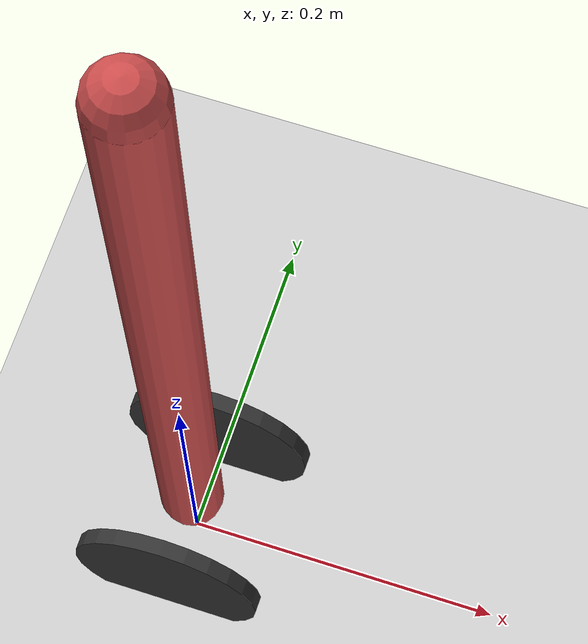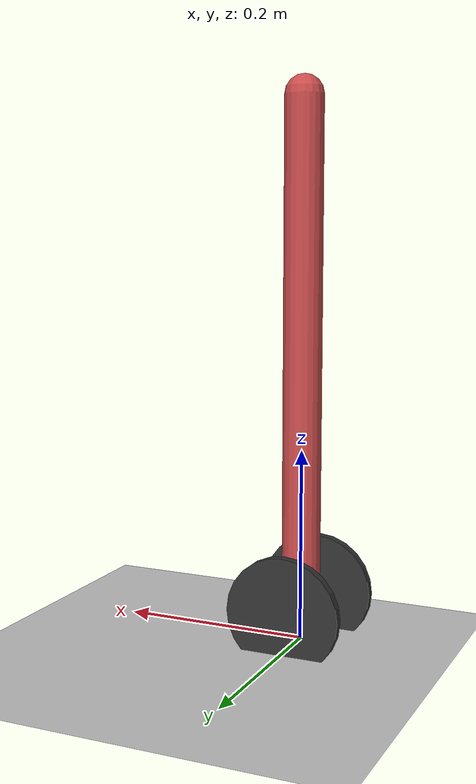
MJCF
<mujoco model="balance_rover">
  <compiler inertiafromgeom="true"/>

  <default>
    <joint   armature="0" damping="1"/>
    <geom    friction="1 0.1 0.1"/>
    <motor   ctrlrange="-5 5"/>
  </default>

  <option gravity="0 0 -9.81" integrator="RK4" timestep="0.0005"/>

  <worldbody>
    <!-- floor plane -->
    <geom type="plane" pos="0 0 0" size="5 5 0.1"
          contype="1" conaffinity="1"
          friction="1 0.1 0.1"
          rgba="0.8 0.8 0.8 1"/>

    <body name="base" pos="0 0 0.02">
      <joint name="slide" type="slide" axis="1 0 0" range="-5 5"/>
      <inertial pos="0 0 0" mass="1.0" diaginertia="0.001 0.001 0.001"/>

      <!-- Left wheel -->
      <body name="wheel_L" pos="0 0.05 0.02">
        <joint name="L_spin" type="hinge" axis="0 1 0" limited="false"/>
        <inertial pos="0 0 0" mass="0.3" diaginertia="0.0001 0.0001 0.0001"/>
        <geom type="cylinder" size="0.06 0.005"
              quat="0.7071 0.7071 0 0"
              contype="1" conaffinity="1"
              friction="1 0.1 0.1"
              rgba="0.2 0.2 0.2 1"/>
      </body>

      <!-- Right wheel -->
      <body name="wheel_R" pos="0 -0.05 0.02">
        <joint name="R_spin" type="hinge" axis="0 1 0" limited="false"/>
        <inertial pos="0 0 0" mass="0.3" diaginertia="0.0001 0.0001 0.0001"/>
        <geom type="cylinder" size="0.06 0.005"
              quat="0.7071 0.7071 0 0"
              contype="1" conaffinity="1"
              friction="1 0.1 0.1"
              rgba="0.2 0.2 0.2 1"/>
      </body>

      <!-- Pendulum pole -->
      <body name="pole" pos="0 0 0.04">
        <joint name="hinge" type="hinge" axis="0 1 0" damping="0.0" limited="false"/>
        <geom type="capsule" fromto="0 0 0  0 0 0.5" size="0.02" rgba="0.8 0.3 0.3 1"/>

        <!-- site at bottom of the pole for the IMU -->
        <site name="imu_site" pos="0 0 0" size="0.01" rgba="0 1 0 0.5"/>
      </body>
    </body>
  </worldbody>

  <!-- corrected sensor block -->
  <sensor>
    <accelerometer name="pole_accel" site="imu_site"/>
    <gyro          name="pole_gyro"  site="imu_site"/>
  </sensor>

  <actuator>
    <motor joint="L_spin" name="u_L" ctrlrange="-3 3" gear="100"/>
    <motor joint="R_spin" name="u_R" ctrlrange="-3 3" gear="100"/>
  </actuator>
</mujoco>
